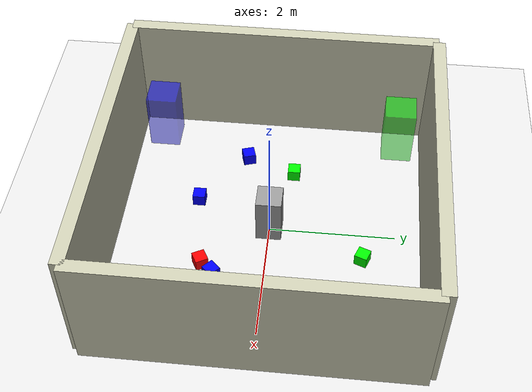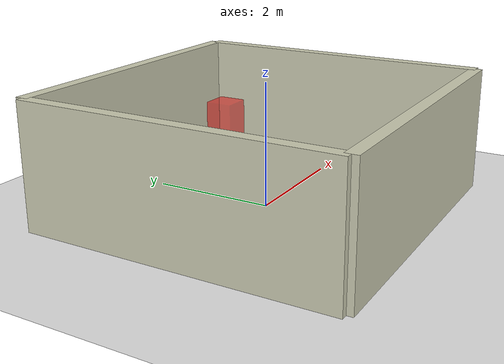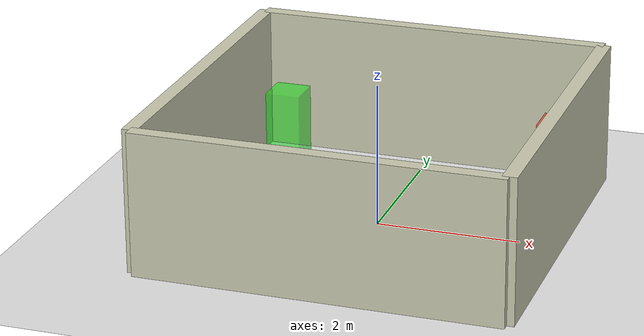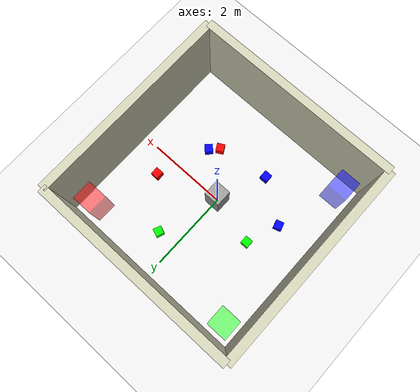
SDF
<?xml version="1.0" ?>
<sdf version="1.8">
  <world name="sorting_room">

    <!-- Physics -->
    <physics name="1ms" type="ignored">
      <max_step_size>0.001</max_step_size>
      <real_time_factor>1.0</real_time_factor>
    </physics>

    <plugin filename="gz-sim-physics-system" name="gz::sim::systems::Physics"></plugin>
    <plugin filename="gz-sim-user-commands-system" name="gz::sim::systems::UserCommands"></plugin>
    <plugin filename="gz-sim-scene-broadcaster-system" name="gz::sim::systems::SceneBroadcaster"></plugin>
    <plugin filename="gz-sim-sensors-system" name="gz::sim::systems::Sensors">
      <render_engine>ogre2</render_engine>
    </plugin>

    <!-- Lighting -->
    <light type="directional" name="sun">
      <cast_shadows>true</cast_shadows>
      <pose>0 0 10 0 0 0</pose>
      <diffuse>0.8 0.8 0.8 1</diffuse>
      <specular>0.2 0.2 0.2 1</specular>
      <direction>-0.5 0.1 -0.9</direction>
    </light>

    <!-- Ground -->
    <model name="ground_plane">
      <static>true</static>
      <link name="link">
        <collision name="collision">
          <geometry>
            <plane>
              <normal>0 0 1</normal>
              <size>100 100</size>
            </plane>
          </geometry>
        </collision>
        <visual name="visual">
          <geometry>
            <plane>
              <normal>0 0 1</normal>
              <size>100 100</size>
            </plane>
          </geometry>
          <material>
            <ambient>0.9 0.9 0.9 1</ambient>
            <diffuse>0.9 0.9 0.9 1</diffuse>
          </material>
        </visual>
      </link>
    </model>

    <!-- ROOM WALLS (5m x 5m room) -->

    <!-- North Wall -->
    <model name="wall_north">
      <pose>0 2.5 1.0 0 0 0</pose>
      <static>true</static>
      <link name="link">
        <collision name="collision">
          <geometry>
            <box><size>5.0 0.2 2.0</size></box>
          </geometry>
        </collision>
        <visual name="visual">
          <geometry>
            <box><size>5.0 0.2 2.0</size></box>
          </geometry>
          <material>
            <ambient>0.8 0.8 0.7 1</ambient>
            <diffuse>0.8 0.8 0.7 1</diffuse>
          </material>
        </visual>
      </link>
    </model>

    <!-- South Wall -->
    <model name="wall_south">
      <pose>0 -2.5 1.0 0 0 0</pose>
      <static>true</static>
      <link name="link">
        <collision name="collision">
          <geometry>
            <box><size>5.0 0.2 2.0</size></box>
          </geometry>
        </collision>
        <visual name="visual">
          <geometry>
            <box><size>5.0 0.2 2.0</size></box>
          </geometry>
          <material>
            <ambient>0.8 0.8 0.7 1</ambient>
            <diffuse>0.8 0.8 0.7 1</diffuse>
          </material>
        </visual>
      </link>
    </model>

    <!-- East Wall -->
    <model name="wall_east">
      <pose>2.5 0 1.0 0 0 0</pose>
      <static>true</static>
      <link name="link">
        <collision name="collision">
          <geometry>
            <box><size>0.2 5.0 2.0</size></box>
          </geometry>
        </collision>
        <visual name="visual">
          <geometry>
            <box><size>0.2 5.0 2.0</size></box>
          </geometry>
          <material>
            <ambient>0.8 0.8 0.7 1</ambient>
            <diffuse>0.8 0.8 0.7 1</diffuse>
          </material>
        </visual>
      </link>
    </model>

    <!-- West Wall -->
    <model name="wall_west">
      <pose>-2.5 0 1.0 0 0 0</pose>
      <static>true</static>
      <link name="link">
        <collision name="collision">
          <geometry>
            <box><size>0.2 5.0 2.0</size></box>
          </geometry>
        </collision>
        <visual name="visual">
          <geometry>
            <box><size>0.2 5.0 2.0</size></box>
          </geometry>
          <material>
            <ambient>0.8 0.8 0.7 1</ambient>
            <diffuse>0.8 0.8 0.7 1</diffuse>
          </material>
        </visual>
      </link>
    </model>

    <!-- RED BASKET (Collection point for red boxes) -->
    <model name="red_basket">
      <pose>2.0 2.0 0.5 0 0 0</pose>
      <static>true</static>
      <link name="link">
        <collision name="collision">
          <geometry>
            <box><size>0.5 0.5 1.0</size></box>
          </geometry>
        </collision>
        <visual name="visual">
          <geometry>
            <box><size>0.5 0.5 1.0</size></box>
          </geometry>
          <material>
            <ambient>1 0 0 0.5</ambient>
            <diffuse>1 0 0 0.5</diffuse>
          </material>
        </visual>
      </link>
    </model>

    <!-- GREEN BASKET -->
    <model name="green_basket">
      <pose>-2.0 2.0 0.5 0 0 0</pose>
      <static>true</static>
      <link name="link">
        <collision name="collision">
          <geometry>
            <box><size>0.5 0.5 1.0</size></box>
          </geometry>
        </collision>
        <visual name="visual">
          <geometry>
            <box><size>0.5 0.5 1.0</size></box>
          </geometry>
          <material>
            <ambient>0 1 0 0.5</ambient>
            <diffuse>0 1 0 0.5</diffuse>
          </material>
        </visual>
      </link>
    </model>

    <!-- BLUE BASKET -->
    <model name="blue_basket">
      <pose>-2.0 -2.0 0.5 0 0 0</pose>
      <static>true</static>
      <link name="link">
        <collision name="collision">
          <geometry>
            <box><size>0.5 0.5 1.0</size></box>
          </geometry>
        </collision>
        <visual name="visual">
          <geometry>
            <box><size>0.5 0.5 1.0</size></box>
          </geometry>
          <material>
            <ambient>0 0 1 0.5</ambient>
            <diffuse>0 0 1 0.5</diffuse>
          </material>
        </visual>
      </link>
    </model>

    <!-- SMALL COLORED BOXES TO SORT -->

    <!-- Red Boxes -->
    <model name="red_box_1">
      <pose>1.5 0.5 0.1 0 0 0</pose>
      <static>false</static>
      <link name="link">
        <inertial>
          <mass>0.5</mass>
          <inertia>
            <ixx>0.0017</ixx>
            <iyy>0.0017</iyy>
            <izz>0.0017</izz>
          </inertia>
        </inertial>
        <collision name="collision">
          <geometry>
            <box><size>0.2 0.2 0.2</size></box>
          </geometry>
        </collision>
        <visual name="visual">
          <geometry>
            <box><size>0.2 0.2 0.2</size></box>
          </geometry>
          <material>
            <ambient>1 0 0 1</ambient>
            <diffuse>1 0 0 1</diffuse>
          </material>
        </visual>
      </link>
    </model>

    <model name="red_box_2">
      <pose>0.8 -1.0 0.1 0 0 0.5</pose>
      <static>false</static>
      <link name="link">
        <inertial>
          <mass>0.5</mass>
          <inertia>
            <ixx>0.0017</ixx>
            <iyy>0.0017</iyy>
            <izz>0.0017</izz>
          </inertia>
        </inertial>
        <collision name="collision">
          <geometry>
            <box><size>0.2 0.2 0.2</size></box>
          </geometry>
        </collision>
        <visual name="visual">
          <geometry>
            <box><size>0.2 0.2 0.2</size></box>
          </geometry>
          <material>
            <ambient>1 0 0 1</ambient>
            <diffuse>1 0 0 1</diffuse>
          </material>
        </visual>
      </link>
    </model>

    <!-- Green Boxes -->
    <model name="green_box_1">
      <pose>-1.2 0.3 0.1 0 0 0</pose>
      <static>false</static>
      <link name="link">
        <inertial>
          <mass>0.5</mass>
          <inertia>
            <ixx>0.0017</ixx>
            <iyy>0.0017</iyy>
            <izz>0.0017</izz>
          </inertia>
        </inertial>
        <collision name="collision">
          <geometry>
            <box><size>0.2 0.2 0.2</size></box>
          </geometry>
        </collision>
        <visual name="visual">
          <geometry>
            <box><size>0.2 0.2 0.2</size></box>
          </geometry>
          <material>
            <ambient>0 1 0 1</ambient>
            <diffuse>0 1 0 1</diffuse>
          </material>
        </visual>
      </link>
    </model>

    <model name="green_box_2">
      <pose>0.5 1.5 0.1 0 0 1.2</pose>
      <static>false</static>
      <link name="link">
        <inertial>
          <mass>0.5</mass>
          <inertia>
            <ixx>0.0017</ixx>
            <iyy>0.0017</iyy>
            <izz>0.0017</izz>
          </inertia>
        </inertial>
        <collision name="collision">
          <geometry>
            <box><size>0.2 0.2 0.2</size></box>
          </geometry>
        </collision>
        <visual name="visual">
          <geometry>
            <box><size>0.2 0.2 0.2</size></box>
          </geometry>
          <material>
            <ambient>0 1 0 1</ambient>
            <diffuse>0 1 0 1</diffuse>
          </material>
        </visual>
      </link>
    </model>

    <!-- Blue Boxes -->
    <model name="blue_box_1">
      <pose>-0.5 -1.2 0.1 0 0 0</pose>
      <static>false</static>
      <link name="link">
        <inertial>
          <mass>0.5</mass>
          <inertia>
            <ixx>0.0017</ixx>
            <iyy>0.0017</iyy>
            <izz>0.0017</izz>
          </inertia>
        </inertial>
        <collision name="collision">
          <geometry>
            <box><size>0.2 0.2 0.2</size></box>
          </geometry>
        </collision>
        <visual name="visual">
          <geometry>
            <box><size>0.2 0.2 0.2</size></box>
          </geometry>
          <material>
            <ambient>0 0 1 1</ambient>
            <diffuse>0 0 1 1</diffuse>
          </material>
        </visual>
      </link>
    </model>

    <model name="blue_box_2">
      <pose>1.0 -0.8 0.1 0 0 0.8</pose>
      <static>false</static>
      <link name="link">
        <inertial>
          <mass>0.5</mass>
          <inertia>
            <ixx>0.0017</ixx>
            <iyy>0.0017</iyy>
            <izz>0.0017</izz>
          </inertia>
        </inertial>
        <collision name="collision">
          <geometry>
            <box><size>0.2 0.2 0.2</size></box>
          </geometry>
        </collision>
        <visual name="visual">
          <geometry>
            <box><size>0.2 0.2 0.2</size></box>
          </geometry>
          <material>
            <ambient>0 0 1 1</ambient>
            <diffuse>0 0 1 1</diffuse>
          </material>
        </visual>
      </link>
    </model>

    <model name="blue_box_3">
      <pose>-1.5 -0.5 0.1 0 0 0.3</pose>
      <static>false</static>
      <link name="link">
        <inertial>
          <mass>0.5</mass>
          <inertia>
            <ixx>0.0017</ixx>
            <iyy>0.0017</iyy>
            <izz>0.0017</izz>
          </inertia>
        </inertial>
        <collision name="collision">
          <geometry>
            <box><size>0.2 0.2 0.2</size></box>
          </geometry>
        </collision>
        <visual name="visual">
          <geometry>
            <box><size>0.2 0.2 0.2</size></box>
          </geometry>
          <material>
            <ambient>0 0 1 1</ambient>
            <diffuse>0 0 1 1</diffuse>
          </material>
        </visual>
      </link>
    </model>

    <!-- Additional obstacles (static objects) -->
    <model name="obstacle_1">
      <pose>0.0 0.0 0.4 0 0 0</pose>
      <static>true</static>
      <link name="link">
        <collision name="collision">
          <geometry>
            <box><size>0.4 0.4 0.8</size></box>
          </geometry>
        </collision>
        <visual name="visual">
          <geometry>
            <box><size>0.4 0.4 0.8</size></box>
          </geometry>
          <material>
            <ambient>0.6 0.6 0.6 1</ambient>
            <diffuse>0.6 0.6 0.6 1</diffuse>
          </material>
        </visual>
      </link>
    </model>

  </world>
</sdf>
